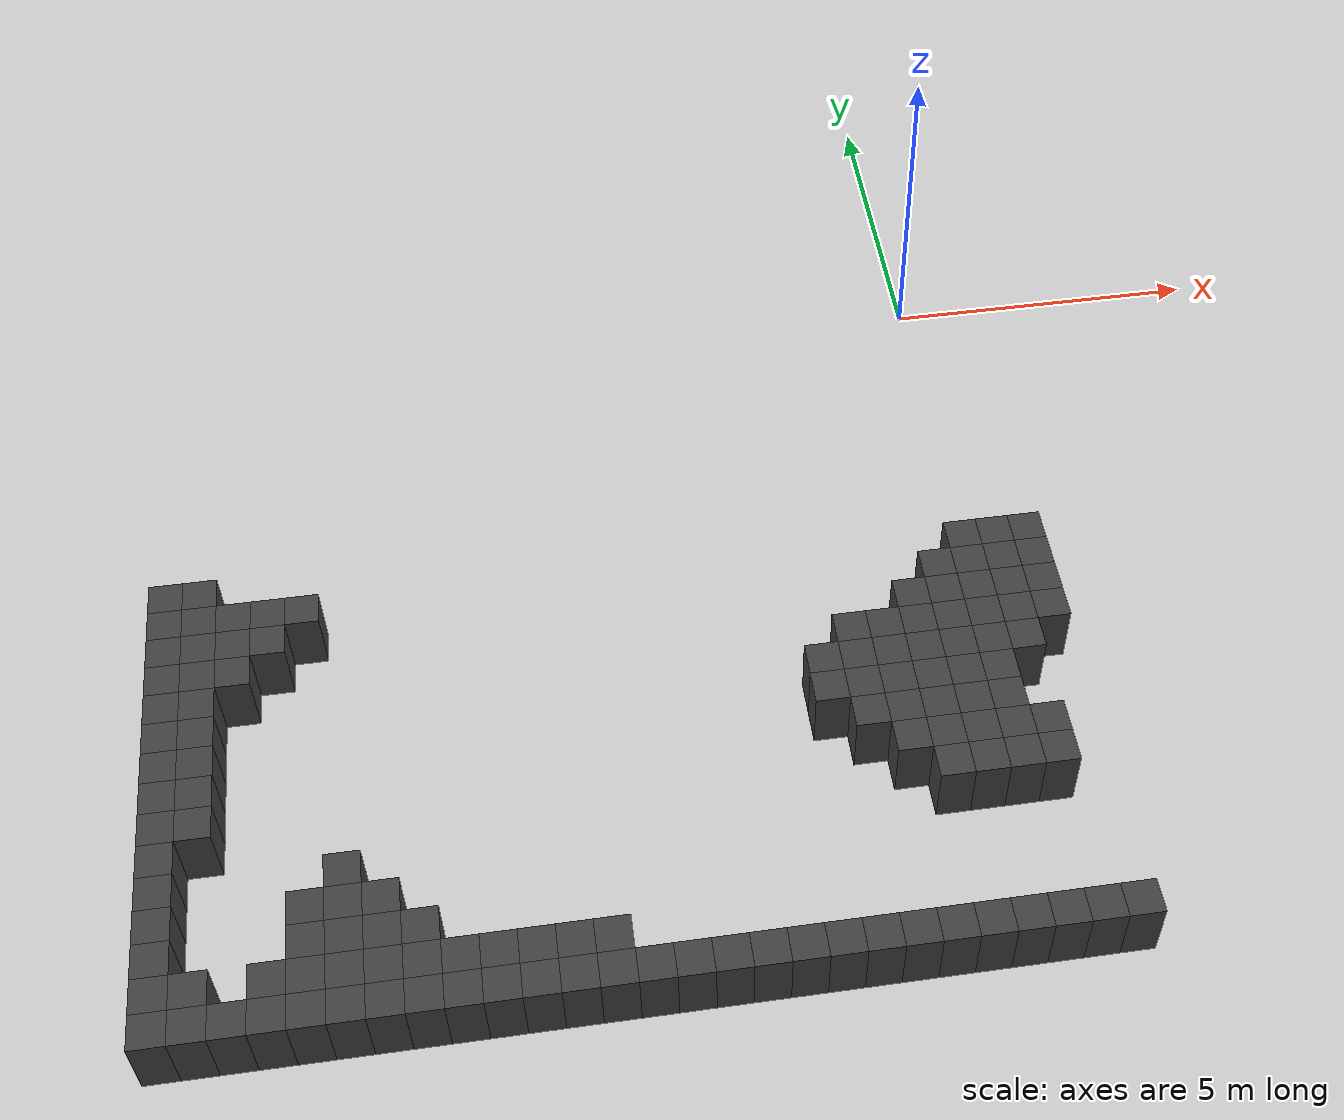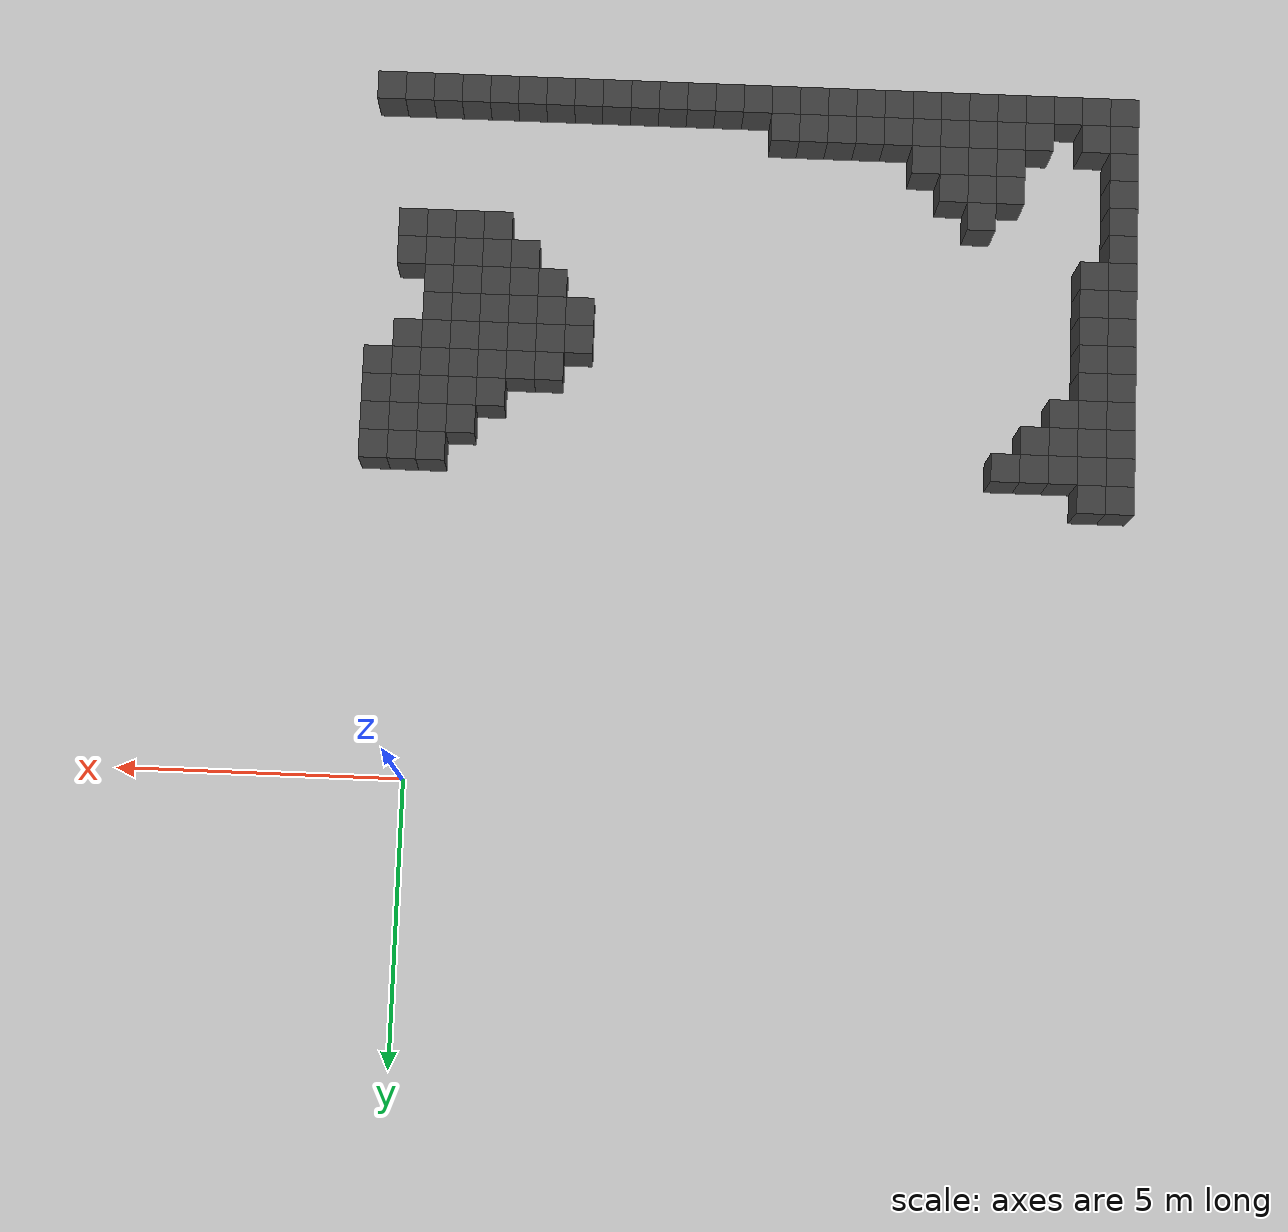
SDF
<sdf version="1.7">
 <world name="map_8661">
  <model name="ground_plane">
   <static>true</static>
   <link name="link">
    <collision name="collision">
     <geometry><plane><normal>0 0 1</normal><size>200 200</size></plane></geometry>
    </collision>
    <visual name="visual">
     <geometry><plane><normal>0 0 1</normal><size>200 200</size></plane></geometry>
     <material><ambient>0.8 0.8 0.8 1</ambient><diffuse>0.8 0.8 0.8 1</diffuse></material>
    </visual>
   </link>
  </model>
  <model name="maze_environment">
   <static>true</static>
   <link name="wall_500">
    <pose>-12.250 -5.250 0.500 0 0 0</pose>
    <collision name="col"><geometry><box><size>0.5 0.5 1.0</size></box></geometry></collision>
    <visual name="vis">
     <geometry><box><size>0.5 0.5 1.0</size></box></geometry>
     <material><ambient>0.15 0.15 0.15 1</ambient><diffuse>0.25 0.25 0.25 1</diffuse></material>
    </visual>
   </link>
   <link name="wall_501">
    <pose>-11.750 -5.250 0.500 0 0 0</pose>
    <collision name="col"><geometry><box><size>0.5 0.5 1.0</size></box></geometry></collision>
    <visual name="vis">
     <geometry><box><size>0.5 0.5 1.0</size></box></geometry>
     <material><ambient>0.15 0.15 0.15 1</ambient><diffuse>0.25 0.25 0.25 1</diffuse></material>
    </visual>
   </link>
   <link name="wall_512">
    <pose>-12.250 -5.750 0.500 0 0 0</pose>
    <collision name="col"><geometry><box><size>0.5 0.5 1.0</size></box></geometry></collision>
    <visual name="vis">
     <geometry><box><size>0.5 0.5 1.0</size></box></geometry>
     <material><ambient>0.15 0.15 0.15 1</ambient><diffuse>0.25 0.25 0.25 1</diffuse></material>
    </visual>
   </link>
   <link name="wall_513">
    <pose>-11.750 -5.750 0.500 0 0 0</pose>
    <collision name="col"><geometry><box><size>0.5 0.5 1.0</size></box></geometry></collision>
    <visual name="vis">
     <geometry><box><size>0.5 0.5 1.0</size></box></geometry>
     <material><ambient>0.15 0.15 0.15 1</ambient><diffuse>0.25 0.25 0.25 1</diffuse></material>
    </visual>
   </link>
   <link name="wall_514">
    <pose>-11.250 -5.750 0.500 0 0 0</pose>
    <collision name="col"><geometry><box><size>0.5 0.5 1.0</size></box></geometry></collision>
    <visual name="vis">
     <geometry><box><size>0.5 0.5 1.0</size></box></geometry>
     <material><ambient>0.15 0.15 0.15 1</ambient><diffuse>0.25 0.25 0.25 1</diffuse></material>
    </visual>
   </link>
   <link name="wall_515">
    <pose>-10.750 -5.750 0.500 0 0 0</pose>
    <collision name="col"><geometry><box><size>0.5 0.5 1.0</size></box></geometry></collision>
    <visual name="vis">
     <geometry><box><size>0.5 0.5 1.0</size></box></geometry>
     <material><ambient>0.15 0.15 0.15 1</ambient><diffuse>0.25 0.25 0.25 1</diffuse></material>
    </visual>
   </link>
   <link name="wall_516">
    <pose>-10.250 -5.750 0.500 0 0 0</pose>
    <collision name="col"><geometry><box><size>0.5 0.5 1.0</size></box></geometry></collision>
    <visual name="vis">
     <geometry><box><size>0.5 0.5 1.0</size></box></geometry>
     <material><ambient>0.15 0.15 0.15 1</ambient><diffuse>0.25 0.25 0.25 1</diffuse></material>
    </visual>
   </link>
   <link name="wall_517">
    <pose>-0.250 -5.750 0.500 0 0 0</pose>
    <collision name="col"><geometry><box><size>0.5 0.5 1.0</size></box></geometry></collision>
    <visual name="vis">
     <geometry><box><size>0.5 0.5 1.0</size></box></geometry>
     <material><ambient>0.15 0.15 0.15 1</ambient><diffuse>0.25 0.25 0.25 1</diffuse></material>
    </visual>
   </link>
   <link name="wall_518">
    <pose>0.250 -5.750 0.500 0 0 0</pose>
    <collision name="col"><geometry><box><size>0.5 0.5 1.0</size></box></geometry></collision>
    <visual name="vis">
     <geometry><box><size>0.5 0.5 1.0</size></box></geometry>
     <material><ambient>0.15 0.15 0.15 1</ambient><diffuse>0.25 0.25 0.25 1</diffuse></material>
    </visual>
   </link>
   <link name="wall_519">
    <pose>0.750 -5.750 0.500 0 0 0</pose>
    <collision name="col"><geometry><box><size>0.5 0.5 1.0</size></box></geometry></collision>
    <visual name="vis">
     <geometry><box><size>0.5 0.5 1.0</size></box></geometry>
     <material><ambient>0.15 0.15 0.15 1</ambient><diffuse>0.25 0.25 0.25 1</diffuse></material>
    </visual>
   </link>
   <link name="wall_523">
    <pose>-12.250 -6.250 0.500 0 0 0</pose>
    <collision name="col"><geometry><box><size>0.5 0.5 1.0</size></box></geometry></collision>
    <visual name="vis">
     <geometry><box><size>0.5 0.5 1.0</size></box></geometry>
     <material><ambient>0.15 0.15 0.15 1</ambient><diffuse>0.25 0.25 0.25 1</diffuse></material>
    </visual>
   </link>
   <link name="wall_524">
    <pose>-11.750 -6.250 0.500 0 0 0</pose>
    <collision name="col"><geometry><box><size>0.5 0.5 1.0</size></box></geometry></collision>
    <visual name="vis">
     <geometry><box><size>0.5 0.5 1.0</size></box></geometry>
     <material><ambient>0.15 0.15 0.15 1</ambient><diffuse>0.25 0.25 0.25 1</diffuse></material>
    </visual>
   </link>
   <link name="wall_525">
    <pose>-11.250 -6.250 0.500 0 0 0</pose>
    <collision name="col"><geometry><box><size>0.5 0.5 1.0</size></box></geometry></collision>
    <visual name="vis">
     <geometry><box><size>0.5 0.5 1.0</size></box></geometry>
     <material><ambient>0.15 0.15 0.15 1</ambient><diffuse>0.25 0.25 0.25 1</diffuse></material>
    </visual>
   </link>
   <link name="wall_526">
    <pose>-10.750 -6.250 0.500 0 0 0</pose>
    <collision name="col"><geometry><box><size>0.5 0.5 1.0</size></box></geometry></collision>
    <visual name="vis">
     <geometry><box><size>0.5 0.5 1.0</size></box></geometry>
     <material><ambient>0.15 0.15 0.15 1</ambient><diffuse>0.25 0.25 0.25 1</diffuse></material>
    </visual>
   </link>
   <link name="wall_527">
    <pose>-0.750 -6.250 0.500 0 0 0</pose>
    <collision name="col"><geometry><box><size>0.5 0.5 1.0</size></box></geometry></collision>
    <visual name="vis">
     <geometry><box><size>0.5 0.5 1.0</size></box></geometry>
     <material><ambient>0.15 0.15 0.15 1</ambient><diffuse>0.25 0.25 0.25 1</diffuse></material>
    </visual>
   </link>
   <link name="wall_528">
    <pose>-0.250 -6.250 0.500 0 0 0</pose>
    <collision name="col"><geometry><box><size>0.5 0.5 1.0</size></box></geometry></collision>
    <visual name="vis">
     <geometry><box><size>0.5 0.5 1.0</size></box></geometry>
     <material><ambient>0.15 0.15 0.15 1</ambient><diffuse>0.25 0.25 0.25 1</diffuse></material>
    </visual>
   </link>
   <link name="wall_529">
    <pose>0.250 -6.250 0.500 0 0 0</pose>
    <collision name="col"><geometry><box><size>0.5 0.5 1.0</size></box></geometry></collision>
    <visual name="vis">
     <geometry><box><size>0.5 0.5 1.0</size></box></geometry>
     <material><ambient>0.15 0.15 0.15 1</ambient><diffuse>0.25 0.25 0.25 1</diffuse></material>
    </visual>
   </link>
   <link name="wall_530">
    <pose>0.750 -6.250 0.500 0 0 0</pose>
    <collision name="col"><geometry><box><size>0.5 0.5 1.0</size></box></geometry></collision>
    <visual name="vis">
     <geometry><box><size>0.5 0.5 1.0</size></box></geometry>
     <material><ambient>0.15 0.15 0.15 1</ambient><diffuse>0.25 0.25 0.25 1</diffuse></material>
    </visual>
   </link>
   <link name="wall_537">
    <pose>-12.250 -6.750 0.500 0 0 0</pose>
    <collision name="col"><geometry><box><size>0.5 0.5 1.0</size></box></geometry></collision>
    <visual name="vis">
     <geometry><box><size>0.5 0.5 1.0</size></box></geometry>
     <material><ambient>0.15 0.15 0.15 1</ambient><diffuse>0.25 0.25 0.25 1</diffuse></material>
    </visual>
   </link>
   <link name="wall_538">
    <pose>-11.750 -6.750 0.500 0 0 0</pose>
    <collision name="col"><geometry><box><size>0.5 0.5 1.0</size></box></geometry></collision>
    <visual name="vis">
     <geometry><box><size>0.5 0.5 1.0</size></box></geometry>
     <material><ambient>0.15 0.15 0.15 1</ambient><diffuse>0.25 0.25 0.25 1</diffuse></material>
    </visual>
   </link>
   <link name="wall_539">
    <pose>-11.250 -6.750 0.500 0 0 0</pose>
    <collision name="col"><geometry><box><size>0.5 0.5 1.0</size></box></geometry></collision>
    <visual name="vis">
     <geometry><box><size>0.5 0.5 1.0</size></box></geometry>
     <material><ambient>0.15 0.15 0.15 1</ambient><diffuse>0.25 0.25 0.25 1</diffuse></material>
    </visual>
   </link>
   <link name="wall_540">
    <pose>-1.250 -6.750 0.500 0 0 0</pose>
    <collision name="col"><geometry><box><size>0.5 0.5 1.0</size></box></geometry></collision>
    <visual name="vis">
     <geometry><box><size>0.5 0.5 1.0</size></box></geometry>
     <material><ambient>0.15 0.15 0.15 1</ambient><diffuse>0.25 0.25 0.25 1</diffuse></material>
    </visual>
   </link>
   <link name="wall_541">
    <pose>-0.750 -6.750 0.500 0 0 0</pose>
    <collision name="col"><geometry><box><size>0.5 0.5 1.0</size></box></geometry></collision>
    <visual name="vis">
     <geometry><box><size>0.5 0.5 1.0</size></box></geometry>
     <material><ambient>0.15 0.15 0.15 1</ambient><diffuse>0.25 0.25 0.25 1</diffuse></material>
    </visual>
   </link>
   <link name="wall_542">
    <pose>-0.250 -6.750 0.500 0 0 0</pose>
    <collision name="col"><geometry><box><size>0.5 0.5 1.0</size></box></geometry></collision>
    <visual name="vis">
     <geometry><box><size>0.5 0.5 1.0</size></box></geometry>
     <material><ambient>0.15 0.15 0.15 1</ambient><diffuse>0.25 0.25 0.25 1</diffuse></material>
    </visual>
   </link>
   <link name="wall_543">
    <pose>0.250 -6.750 0.500 0 0 0</pose>
    <collision name="col"><geometry><box><size>0.5 0.5 1.0</size></box></geometry></collision>
    <visual name="vis">
     <geometry><box><size>0.5 0.5 1.0</size></box></geometry>
     <material><ambient>0.15 0.15 0.15 1</ambient><diffuse>0.25 0.25 0.25 1</diffuse></material>
    </visual>
   </link>
   <link name="wall_544">
    <pose>0.750 -6.750 0.500 0 0 0</pose>
    <collision name="col"><geometry><box><size>0.5 0.5 1.0</size></box></geometry></collision>
    <visual name="vis">
     <geometry><box><size>0.5 0.5 1.0</size></box></geometry>
     <material><ambient>0.15 0.15 0.15 1</ambient><diffuse>0.25 0.25 0.25 1</diffuse></material>
    </visual>
   </link>
   <link name="wall_555">
    <pose>-12.250 -7.250 0.500 0 0 0</pose>
    <collision name="col"><geometry><box><size>0.5 0.5 1.0</size></box></geometry></collision>
    <visual name="vis">
     <geometry><box><size>0.5 0.5 1.0</size></box></geometry>
     <material><ambient>0.15 0.15 0.15 1</ambient><diffuse>0.25 0.25 0.25 1</diffuse></material>
    </visual>
   </link>
   <link name="wall_556">
    <pose>-11.750 -7.250 0.500 0 0 0</pose>
    <collision name="col"><geometry><box><size>0.5 0.5 1.0</size></box></geometry></collision>
    <visual name="vis">
     <geometry><box><size>0.5 0.5 1.0</size></box></geometry>
     <material><ambient>0.15 0.15 0.15 1</ambient><diffuse>0.25 0.25 0.25 1</diffuse></material>
    </visual>
   </link>
   <link name="wall_557">
    <pose>-2.250 -7.250 0.500 0 0 0</pose>
    <collision name="col"><geometry><box><size>0.5 0.5 1.0</size></box></geometry></collision>
    <visual name="vis">
     <geometry><box><size>0.5 0.5 1.0</size></box></geometry>
     <material><ambient>0.15 0.15 0.15 1</ambient><diffuse>0.25 0.25 0.25 1</diffuse></material>
    </visual>
   </link>
   <link name="wall_558">
    <pose>-1.750 -7.250 0.500 0 0 0</pose>
    <collision name="col"><geometry><box><size>0.5 0.5 1.0</size></box></geometry></collision>
    <visual name="vis">
     <geometry><box><size>0.5 0.5 1.0</size></box></geometry>
     <material><ambient>0.15 0.15 0.15 1</ambient><diffuse>0.25 0.25 0.25 1</diffuse></material>
    </visual>
   </link>
   <link name="wall_559">
    <pose>-1.250 -7.250 0.500 0 0 0</pose>
    <collision name="col"><geometry><box><size>0.5 0.5 1.0</size></box></geometry></collision>
    <visual name="vis">
     <geometry><box><size>0.5 0.5 1.0</size></box></geometry>
     <material><ambient>0.15 0.15 0.15 1</ambient><diffuse>0.25 0.25 0.25 1</diffuse></material>
    </visual>
   </link>
   <link name="wall_560">
    <pose>-0.750 -7.250 0.500 0 0 0</pose>
    <collision name="col"><geometry><box><size>0.5 0.5 1.0</size></box></geometry></collision>
    <visual name="vis">
     <geometry><box><size>0.5 0.5 1.0</size></box></geometry>
     <material><ambient>0.15 0.15 0.15 1</ambient><diffuse>0.25 0.25 0.25 1</diffuse></material>
    </visual>
   </link>
   <link name="wall_561">
    <pose>-0.250 -7.250 0.500 0 0 0</pose>
    <collision name="col"><geometry><box><size>0.5 0.5 1.0</size></box></geometry></collision>
    <visual name="vis">
     <geometry><box><size>0.5 0.5 1.0</size></box></geometry>
     <material><ambient>0.15 0.15 0.15 1</ambient><diffuse>0.25 0.25 0.25 1</diffuse></material>
    </visual>
   </link>
   <link name="wall_562">
    <pose>0.250 -7.250 0.500 0 0 0</pose>
    <collision name="col"><geometry><box><size>0.5 0.5 1.0</size></box></geometry></collision>
    <visual name="vis">
     <geometry><box><size>0.5 0.5 1.0</size></box></geometry>
     <material><ambient>0.15 0.15 0.15 1</ambient><diffuse>0.25 0.25 0.25 1</diffuse></material>
    </visual>
   </link>
   <link name="wall_563">
    <pose>0.750 -7.250 0.500 0 0 0</pose>
    <collision name="col"><geometry><box><size>0.5 0.5 1.0</size></box></geometry></collision>
    <visual name="vis">
     <geometry><box><size>0.5 0.5 1.0</size></box></geometry>
     <material><ambient>0.15 0.15 0.15 1</ambient><diffuse>0.25 0.25 0.25 1</diffuse></material>
    </visual>
   </link>
   <link name="wall_577">
    <pose>-12.250 -7.750 0.500 0 0 0</pose>
    <collision name="col"><geometry><box><size>0.5 0.5 1.0</size></box></geometry></collision>
    <visual name="vis">
     <geometry><box><size>0.5 0.5 1.0</size></box></geometry>
     <material><ambient>0.15 0.15 0.15 1</ambient><diffuse>0.25 0.25 0.25 1</diffuse></material>
    </visual>
   </link>
   <link name="wall_578">
    <pose>-11.750 -7.750 0.500 0 0 0</pose>
    <collision name="col"><geometry><box><size>0.5 0.5 1.0</size></box></geometry></collision>
    <visual name="vis">
     <geometry><box><size>0.5 0.5 1.0</size></box></geometry>
     <material><ambient>0.15 0.15 0.15 1</ambient><diffuse>0.25 0.25 0.25 1</diffuse></material>
    </visual>
   </link>
   <link name="wall_579">
    <pose>-2.750 -7.750 0.500 0 0 0</pose>
    <collision name="col"><geometry><box><size>0.5 0.5 1.0</size></box></geometry></collision>
    <visual name="vis">
     <geometry><box><size>0.5 0.5 1.0</size></box></geometry>
     <material><ambient>0.15 0.15 0.15 1</ambient><diffuse>0.25 0.25 0.25 1</diffuse></material>
    </visual>
   </link>
   <link name="wall_580">
    <pose>-2.250 -7.750 0.500 0 0 0</pose>
    <collision name="col"><geometry><box><size>0.5 0.5 1.0</size></box></geometry></collision>
    <visual name="vis">
     <geometry><box><size>0.5 0.5 1.0</size></box></geometry>
     <material><ambient>0.15 0.15 0.15 1</ambient><diffuse>0.25 0.25 0.25 1</diffuse></material>
    </visual>
   </link>
   <link name="wall_581">
    <pose>-1.750 -7.750 0.500 0 0 0</pose>
    <collision name="col"><geometry><box><size>0.5 0.5 1.0</size></box></geometry></collision>
    <visual name="vis">
     <geometry><box><size>0.5 0.5 1.0</size></box></geometry>
     <material><ambient>0.15 0.15 0.15 1</ambient><diffuse>0.25 0.25 0.25 1</diffuse></material>
    </visual>
   </link>
   <link name="wall_582">
    <pose>-1.250 -7.750 0.500 0 0 0</pose>
    <collision name="col"><geometry><box><size>0.5 0.5 1.0</size></box></geometry></collision>
    <visual name="vis">
     <geometry><box><size>0.5 0.5 1.0</size></box></geometry>
     <material><ambient>0.15 0.15 0.15 1</ambient><diffuse>0.25 0.25 0.25 1</diffuse></material>
    </visual>
   </link>
   <link name="wall_583">
    <pose>-0.750 -7.750 0.500 0 0 0</pose>
    <collision name="col"><geometry><box><size>0.5 0.5 1.0</size></box></geometry></collision>
    <visual name="vis">
     <geometry><box><size>0.5 0.5 1.0</size></box></geometry>
     <material><ambient>0.15 0.15 0.15 1</ambient><diffuse>0.25 0.25 0.25 1</diffuse></material>
    </visual>
   </link>
   <link name="wall_584">
    <pose>-0.250 -7.750 0.500 0 0 0</pose>
    <collision name="col"><geometry><box><size>0.5 0.5 1.0</size></box></geometry></collision>
    <visual name="vis">
     <geometry><box><size>0.5 0.5 1.0</size></box></geometry>
     <material><ambient>0.15 0.15 0.15 1</ambient><diffuse>0.25 0.25 0.25 1</diffuse></material>
    </visual>
   </link>
   <link name="wall_585">
    <pose>0.250 -7.750 0.500 0 0 0</pose>
    <collision name="col"><geometry><box><size>0.5 0.5 1.0</size></box></geometry></collision>
    <visual name="vis">
     <geometry><box><size>0.5 0.5 1.0</size></box></geometry>
     <material><ambient>0.15 0.15 0.15 1</ambient><diffuse>0.25 0.25 0.25 1</diffuse></material>
    </visual>
   </link>
   <link name="wall_596">
    <pose>-12.250 -8.250 0.500 0 0 0</pose>
    <collision name="col"><geometry><box><size>0.5 0.5 1.0</size></box></geometry></collision>
    <visual name="vis">
     <geometry><box><size>0.5 0.5 1.0</size></box></geometry>
     <material><ambient>0.15 0.15 0.15 1</ambient><diffuse>0.25 0.25 0.25 1</diffuse></material>
    </visual>
   </link>
   <link name="wall_597">
    <pose>-11.750 -8.250 0.500 0 0 0</pose>
    <collision name="col"><geometry><box><size>0.5 0.5 1.0</size></box></geometry></collision>
    <visual name="vis">
     <geometry><box><size>0.5 0.5 1.0</size></box></geometry>
     <material><ambient>0.15 0.15 0.15 1</ambient><diffuse>0.25 0.25 0.25 1</diffuse></material>
    </visual>
   </link>
   <link name="wall_598">
    <pose>-2.750 -8.250 0.500 0 0 0</pose>
    <collision name="col"><geometry><box><size>0.5 0.5 1.0</size></box></geometry></collision>
    <visual name="vis">
     <geometry><box><size>0.5 0.5 1.0</size></box></geometry>
     <material><ambient>0.15 0.15 0.15 1</ambient><diffuse>0.25 0.25 0.25 1</diffuse></material>
    </visual>
   </link>
   <link name="wall_599">
    <pose>-2.250 -8.250 0.500 0 0 0</pose>
    <collision name="col"><geometry><box><size>0.5 0.5 1.0</size></box></geometry></collision>
    <visual name="vis">
     <geometry><box><size>0.5 0.5 1.0</size></box></geometry>
     <material><ambient>0.15 0.15 0.15 1</ambient><diffuse>0.25 0.25 0.25 1</diffuse></material>
    </visual>
   </link>
   <link name="wall_600">
    <pose>-1.750 -8.250 0.500 0 0 0</pose>
    <collision name="col"><geometry><box><size>0.5 0.5 1.0</size></box></geometry></collision>
    <visual name="vis">
     <geometry><box><size>0.5 0.5 1.0</size></box></geometry>
     <material><ambient>0.15 0.15 0.15 1</ambient><diffuse>0.25 0.25 0.25 1</diffuse></material>
    </visual>
   </link>
   <link name="wall_601">
    <pose>-1.250 -8.250 0.500 0 0 0</pose>
    <collision name="col"><geometry><box><size>0.5 0.5 1.0</size></box></geometry></collision>
    <visual name="vis">
     <geometry><box><size>0.5 0.5 1.0</size></box></geometry>
     <material><ambient>0.15 0.15 0.15 1</ambient><diffuse>0.25 0.25 0.25 1</diffuse></material>
    </visual>
   </link>
   <link name="wall_602">
    <pose>-0.750 -8.250 0.500 0 0 0</pose>
    <collision name="col"><geometry><box><size>0.5 0.5 1.0</size></box></geometry></collision>
    <visual name="vis">
     <geometry><box><size>0.5 0.5 1.0</size></box></geometry>
     <material><ambient>0.15 0.15 0.15 1</ambient><diffuse>0.25 0.25 0.25 1</diffuse></material>
    </visual>
   </link>
   <link name="wall_603">
    <pose>-0.250 -8.250 0.500 0 0 0</pose>
    <collision name="col"><geometry><box><size>0.5 0.5 1.0</size></box></geometry></collision>
    <visual name="vis">
     <geometry><box><size>0.5 0.5 1.0</size></box></geometry>
     <material><ambient>0.15 0.15 0.15 1</ambient><diffuse>0.25 0.25 0.25 1</diffuse></material>
    </visual>
   </link>
   <link name="wall_610">
    <pose>-12.250 -8.750 0.500 0 0 0</pose>
    <collision name="col"><geometry><box><size>0.5 0.5 1.0</size></box></geometry></collision>
    <visual name="vis">
     <geometry><box><size>0.5 0.5 1.0</size></box></geometry>
     <material><ambient>0.15 0.15 0.15 1</ambient><diffuse>0.25 0.25 0.25 1</diffuse></material>
    </visual>
   </link>
   <link name="wall_611">
    <pose>-11.750 -8.750 0.500 0 0 0</pose>
    <collision name="col"><geometry><box><size>0.5 0.5 1.0</size></box></geometry></collision>
    <visual name="vis">
     <geometry><box><size>0.5 0.5 1.0</size></box></geometry>
     <material><ambient>0.15 0.15 0.15 1</ambient><diffuse>0.25 0.25 0.25 1</diffuse></material>
    </visual>
   </link>
   <link name="wall_612">
    <pose>-2.250 -8.750 0.500 0 0 0</pose>
    <collision name="col"><geometry><box><size>0.5 0.5 1.0</size></box></geometry></collision>
    <visual name="vis">
     <geometry><box><size>0.5 0.5 1.0</size></box></geometry>
     <material><ambient>0.15 0.15 0.15 1</ambient><diffuse>0.25 0.25 0.25 1</diffuse></material>
    </visual>
   </link>
   <link name="wall_613">
    <pose>-1.750 -8.750 0.500 0 0 0</pose>
    <collision name="col"><geometry><box><size>0.5 0.5 1.0</size></box></geometry></collision>
    <visual name="vis">
     <geometry><box><size>0.5 0.5 1.0</size></box></geometry>
     <material><ambient>0.15 0.15 0.15 1</ambient><diffuse>0.25 0.25 0.25 1</diffuse></material>
    </visual>
   </link>
   <link name="wall_614">
    <pose>-1.250 -8.750 0.500 0 0 0</pose>
    <collision name="col"><geometry><box><size>0.5 0.5 1.0</size></box></geometry></collision>
    <visual name="vis">
     <geometry><box><size>0.5 0.5 1.0</size></box></geometry>
     <material><ambient>0.15 0.15 0.15 1</ambient><diffuse>0.25 0.25 0.25 1</diffuse></material>
    </visual>
   </link>
   <link name="wall_615">
    <pose>-0.750 -8.750 0.500 0 0 0</pose>
    <collision name="col"><geometry><box><size>0.5 0.5 1.0</size></box></geometry></collision>
    <visual name="vis">
     <geometry><box><size>0.5 0.5 1.0</size></box></geometry>
     <material><ambient>0.15 0.15 0.15 1</ambient><diffuse>0.25 0.25 0.25 1</diffuse></material>
    </visual>
   </link>
   <link name="wall_616">
    <pose>-0.250 -8.750 0.500 0 0 0</pose>
    <collision name="col"><geometry><box><size>0.5 0.5 1.0</size></box></geometry></collision>
    <visual name="vis">
     <geometry><box><size>0.5 0.5 1.0</size></box></geometry>
     <material><ambient>0.15 0.15 0.15 1</ambient><diffuse>0.25 0.25 0.25 1</diffuse></material>
    </visual>
   </link>
   <link name="wall_621">
    <pose>-12.250 -9.250 0.500 0 0 0</pose>
    <collision name="col"><geometry><box><size>0.5 0.5 1.0</size></box></geometry></collision>
    <visual name="vis">
     <geometry><box><size>0.5 0.5 1.0</size></box></geometry>
     <material><ambient>0.15 0.15 0.15 1</ambient><diffuse>0.25 0.25 0.25 1</diffuse></material>
    </visual>
   </link>
   <link name="wall_622">
    <pose>-11.750 -9.250 0.500 0 0 0</pose>
    <collision name="col"><geometry><box><size>0.5 0.5 1.0</size></box></geometry></collision>
    <visual name="vis">
     <geometry><box><size>0.5 0.5 1.0</size></box></geometry>
     <material><ambient>0.15 0.15 0.15 1</ambient><diffuse>0.25 0.25 0.25 1</diffuse></material>
    </visual>
   </link>
   <link name="wall_623">
    <pose>-1.750 -9.250 0.500 0 0 0</pose>
    <collision name="col"><geometry><box><size>0.5 0.5 1.0</size></box></geometry></collision>
    <visual name="vis">
     <geometry><box><size>0.5 0.5 1.0</size></box></geometry>
     <material><ambient>0.15 0.15 0.15 1</ambient><diffuse>0.25 0.25 0.25 1</diffuse></material>
    </visual>
   </link>
   <link name="wall_624">
    <pose>-1.250 -9.250 0.500 0 0 0</pose>
    <collision name="col"><geometry><box><size>0.5 0.5 1.0</size></box></geometry></collision>
    <visual name="vis">
     <geometry><box><size>0.5 0.5 1.0</size></box></geometry>
     <material><ambient>0.15 0.15 0.15 1</ambient><diffuse>0.25 0.25 0.25 1</diffuse></material>
    </visual>
   </link>
   <link name="wall_625">
    <pose>-0.750 -9.250 0.500 0 0 0</pose>
    <collision name="col"><geometry><box><size>0.5 0.5 1.0</size></box></geometry></collision>
    <visual name="vis">
     <geometry><box><size>0.5 0.5 1.0</size></box></geometry>
     <material><ambient>0.15 0.15 0.15 1</ambient><diffuse>0.25 0.25 0.25 1</diffuse></material>
    </visual>
   </link>
   <link name="wall_626">
    <pose>-0.250 -9.250 0.500 0 0 0</pose>
    <collision name="col"><geometry><box><size>0.5 0.5 1.0</size></box></geometry></collision>
    <visual name="vis">
     <geometry><box><size>0.5 0.5 1.0</size></box></geometry>
     <material><ambient>0.15 0.15 0.15 1</ambient><diffuse>0.25 0.25 0.25 1</diffuse></material>
    </visual>
   </link>
   <link name="wall_627">
    <pose>0.250 -9.250 0.500 0 0 0</pose>
    <collision name="col"><geometry><box><size>0.5 0.5 1.0</size></box></geometry></collision>
    <visual name="vis">
     <geometry><box><size>0.5 0.5 1.0</size></box></geometry>
     <material><ambient>0.15 0.15 0.15 1</ambient><diffuse>0.25 0.25 0.25 1</diffuse></material>
    </visual>
   </link>
   <link name="wall_632">
    <pose>-12.250 -9.750 0.500 0 0 0</pose>
    <collision name="col"><geometry><box><size>0.5 0.5 1.0</size></box></geometry></collision>
    <visual name="vis">
     <geometry><box><size>0.5 0.5 1.0</size></box></geometry>
     <material><ambient>0.15 0.15 0.15 1</ambient><diffuse>0.25 0.25 0.25 1</diffuse></material>
    </visual>
   </link>
   <link name="wall_633">
    <pose>-1.250 -9.750 0.500 0 0 0</pose>
    <collision name="col"><geometry><box><size>0.5 0.5 1.0</size></box></geometry></collision>
    <visual name="vis">
     <geometry><box><size>0.5 0.5 1.0</size></box></geometry>
     <material><ambient>0.15 0.15 0.15 1</ambient><diffuse>0.25 0.25 0.25 1</diffuse></material>
    </visual>
   </link>
   <link name="wall_634">
    <pose>-0.750 -9.750 0.500 0 0 0</pose>
    <collision name="col"><geometry><box><size>0.5 0.5 1.0</size></box></geometry></collision>
    <visual name="vis">
     <geometry><box><size>0.5 0.5 1.0</size></box></geometry>
     <material><ambient>0.15 0.15 0.15 1</ambient><diffuse>0.25 0.25 0.25 1</diffuse></material>
    </visual>
   </link>
   <link name="wall_635">
    <pose>-0.250 -9.750 0.500 0 0 0</pose>
    <collision name="col"><geometry><box><size>0.5 0.5 1.0</size></box></geometry></collision>
    <visual name="vis">
     <geometry><box><size>0.5 0.5 1.0</size></box></geometry>
     <material><ambient>0.15 0.15 0.15 1</ambient><diffuse>0.25 0.25 0.25 1</diffuse></material>
    </visual>
   </link>
   <link name="wall_636">
    <pose>0.250 -9.750 0.500 0 0 0</pose>
    <collision name="col"><geometry><box><size>0.5 0.5 1.0</size></box></geometry></collision>
    <visual name="vis">
     <geometry><box><size>0.5 0.5 1.0</size></box></geometry>
     <material><ambient>0.15 0.15 0.15 1</ambient><diffuse>0.25 0.25 0.25 1</diffuse></material>
    </visual>
   </link>
   <link name="wall_638">
    <pose>-12.250 -10.250 0.500 0 0 0</pose>
    <collision name="col"><geometry><box><size>0.5 0.5 1.0</size></box></geometry></collision>
    <visual name="vis">
     <geometry><box><size>0.5 0.5 1.0</size></box></geometry>
     <material><ambient>0.15 0.15 0.15 1</ambient><diffuse>0.25 0.25 0.25 1</diffuse></material>
    </visual>
   </link>
   <link name="wall_639">
    <pose>-9.750 -10.250 0.500 0 0 0</pose>
    <collision name="col"><geometry><box><size>0.5 0.5 1.0</size></box></geometry></collision>
    <visual name="vis">
     <geometry><box><size>0.5 0.5 1.0</size></box></geometry>
     <material><ambient>0.15 0.15 0.15 1</ambient><diffuse>0.25 0.25 0.25 1</diffuse></material>
    </visual>
   </link>
   <link name="wall_641">
    <pose>-12.250 -10.750 0.500 0 0 0</pose>
    <collision name="col"><geometry><box><size>0.5 0.5 1.0</size></box></geometry></collision>
    <visual name="vis">
     <geometry><box><size>0.5 0.5 1.0</size></box></geometry>
     <material><ambient>0.15 0.15 0.15 1</ambient><diffuse>0.25 0.25 0.25 1</diffuse></material>
    </visual>
   </link>
   <link name="wall_642">
    <pose>-10.250 -10.750 0.500 0 0 0</pose>
    <collision name="col"><geometry><box><size>0.5 0.5 1.0</size></box></geometry></collision>
    <visual name="vis">
     <geometry><box><size>0.5 0.5 1.0</size></box></geometry>
     <material><ambient>0.15 0.15 0.15 1</ambient><diffuse>0.25 0.25 0.25 1</diffuse></material>
    </visual>
   </link>
   <link name="wall_643">
    <pose>-9.750 -10.750 0.500 0 0 0</pose>
    <collision name="col"><geometry><box><size>0.5 0.5 1.0</size></box></geometry></collision>
    <visual name="vis">
     <geometry><box><size>0.5 0.5 1.0</size></box></geometry>
     <material><ambient>0.15 0.15 0.15 1</ambient><diffuse>0.25 0.25 0.25 1</diffuse></material>
    </visual>
   </link>
   <link name="wall_644">
    <pose>-9.250 -10.750 0.500 0 0 0</pose>
    <collision name="col"><geometry><box><size>0.5 0.5 1.0</size></box></geometry></collision>
    <visual name="vis">
     <geometry><box><size>0.5 0.5 1.0</size></box></geometry>
     <material><ambient>0.15 0.15 0.15 1</ambient><diffuse>0.25 0.25 0.25 1</diffuse></material>
    </visual>
   </link>
   <link name="wall_646">
    <pose>-12.250 -11.250 0.500 0 0 0</pose>
    <collision name="col"><geometry><box><size>0.5 0.5 1.0</size></box></geometry></collision>
    <visual name="vis">
     <geometry><box><size>0.5 0.5 1.0</size></box></geometry>
     <material><ambient>0.15 0.15 0.15 1</ambient><diffuse>0.25 0.25 0.25 1</diffuse></material>
    </visual>
   </link>
   <link name="wall_647">
    <pose>-10.250 -11.250 0.500 0 0 0</pose>
    <collision name="col"><geometry><box><size>0.5 0.5 1.0</size></box></geometry></collision>
    <visual name="vis">
     <geometry><box><size>0.5 0.5 1.0</size></box></geometry>
     <material><ambient>0.15 0.15 0.15 1</ambient><diffuse>0.25 0.25 0.25 1</diffuse></material>
    </visual>
   </link>
   <link name="wall_648">
    <pose>-9.750 -11.250 0.500 0 0 0</pose>
    <collision name="col"><geometry><box><size>0.5 0.5 1.0</size></box></geometry></collision>
    <visual name="vis">
     <geometry><box><size>0.5 0.5 1.0</size></box></geometry>
     <material><ambient>0.15 0.15 0.15 1</ambient><diffuse>0.25 0.25 0.25 1</diffuse></material>
    </visual>
   </link>
   <link name="wall_649">
    <pose>-9.250 -11.250 0.500 0 0 0</pose>
    <collision name="col"><geometry><box><size>0.5 0.5 1.0</size></box></geometry></collision>
    <visual name="vis">
     <geometry><box><size>0.5 0.5 1.0</size></box></geometry>
     <material><ambient>0.15 0.15 0.15 1</ambient><diffuse>0.25 0.25 0.25 1</diffuse></material>
    </visual>
   </link>
   <link name="wall_650">
    <pose>-8.750 -11.250 0.500 0 0 0</pose>
    <collision name="col"><geometry><box><size>0.5 0.5 1.0</size></box></geometry></collision>
    <visual name="vis">
     <geometry><box><size>0.5 0.5 1.0</size></box></geometry>
     <material><ambient>0.15 0.15 0.15 1</ambient><diffuse>0.25 0.25 0.25 1</diffuse></material>
    </visual>
   </link>
   <link name="wall_654">
    <pose>-12.250 -11.750 0.500 0 0 0</pose>
    <collision name="col"><geometry><box><size>0.5 0.5 1.0</size></box></geometry></collision>
    <visual name="vis">
     <geometry><box><size>0.5 0.5 1.0</size></box></geometry>
     <material><ambient>0.15 0.15 0.15 1</ambient><diffuse>0.25 0.25 0.25 1</diffuse></material>
    </visual>
   </link>
   <link name="wall_655">
    <pose>-11.750 -11.750 0.500 0 0 0</pose>
    <collision name="col"><geometry><box><size>0.5 0.5 1.0</size></box></geometry></collision>
    <visual name="vis">
     <geometry><box><size>0.5 0.5 1.0</size></box></geometry>
     <material><ambient>0.15 0.15 0.15 1</ambient><diffuse>0.25 0.25 0.25 1</diffuse></material>
    </visual>
   </link>
   <link name="wall_656">
    <pose>-10.750 -11.750 0.500 0 0 0</pose>
    <collision name="col"><geometry><box><size>0.5 0.5 1.0</size></box></geometry></collision>
    <visual name="vis">
     <geometry><box><size>0.5 0.5 1.0</size></box></geometry>
     <material><ambient>0.15 0.15 0.15 1</ambient><diffuse>0.25 0.25 0.25 1</diffuse></material>
    </visual>
   </link>
   <link name="wall_657">
    <pose>-10.250 -11.750 0.500 0 0 0</pose>
    <collision name="col"><geometry><box><size>0.5 0.5 1.0</size></box></geometry></collision>
    <visual name="vis">
     <geometry><box><size>0.5 0.5 1.0</size></box></geometry>
     <material><ambient>0.15 0.15 0.15 1</ambient><diffuse>0.25 0.25 0.25 1</diffuse></material>
    </visual>
   </link>
   <link name="wall_658">
    <pose>-9.750 -11.750 0.500 0 0 0</pose>
    <collision name="col"><geometry><box><size>0.5 0.5 1.0</size></box></geometry></collision>
    <visual name="vis">
     <geometry><box><size>0.5 0.5 1.0</size></box></geometry>
     <material><ambient>0.15 0.15 0.15 1</ambient><diffuse>0.25 0.25 0.25 1</diffuse></material>
    </visual>
   </link>
   <link name="wall_659">
    <pose>-9.250 -11.750 0.500 0 0 0</pose>
    <collision name="col"><geometry><box><size>0.5 0.5 1.0</size></box></geometry></collision>
    <visual name="vis">
     <geometry><box><size>0.5 0.5 1.0</size></box></geometry>
     <material><ambient>0.15 0.15 0.15 1</ambient><diffuse>0.25 0.25 0.25 1</diffuse></material>
    </visual>
   </link>
   <link name="wall_660">
    <pose>-8.750 -11.750 0.500 0 0 0</pose>
    <collision name="col"><geometry><box><size>0.5 0.5 1.0</size></box></geometry></collision>
    <visual name="vis">
     <geometry><box><size>0.5 0.5 1.0</size></box></geometry>
     <material><ambient>0.15 0.15 0.15 1</ambient><diffuse>0.25 0.25 0.25 1</diffuse></material>
    </visual>
   </link>
   <link name="wall_661">
    <pose>-8.250 -11.750 0.500 0 0 0</pose>
    <collision name="col"><geometry><box><size>0.5 0.5 1.0</size></box></geometry></collision>
    <visual name="vis">
     <geometry><box><size>0.5 0.5 1.0</size></box></geometry>
     <material><ambient>0.15 0.15 0.15 1</ambient><diffuse>0.25 0.25 0.25 1</diffuse></material>
    </visual>
   </link>
   <link name="wall_662">
    <pose>-7.750 -11.750 0.500 0 0 0</pose>
    <collision name="col"><geometry><box><size>0.5 0.5 1.0</size></box></geometry></collision>
    <visual name="vis">
     <geometry><box><size>0.5 0.5 1.0</size></box></geometry>
     <material><ambient>0.15 0.15 0.15 1</ambient><diffuse>0.25 0.25 0.25 1</diffuse></material>
    </visual>
   </link>
   <link name="wall_663">
    <pose>-7.250 -11.750 0.500 0 0 0</pose>
    <collision name="col"><geometry><box><size>0.5 0.5 1.0</size></box></geometry></collision>
    <visual name="vis">
     <geometry><box><size>0.5 0.5 1.0</size></box></geometry>
     <material><ambient>0.15 0.15 0.15 1</ambient><diffuse>0.25 0.25 0.25 1</diffuse></material>
    </visual>
   </link>
   <link name="wall_664">
    <pose>-6.750 -11.750 0.500 0 0 0</pose>
    <collision name="col"><geometry><box><size>0.5 0.5 1.0</size></box></geometry></collision>
    <visual name="vis">
     <geometry><box><size>0.5 0.5 1.0</size></box></geometry>
     <material><ambient>0.15 0.15 0.15 1</ambient><diffuse>0.25 0.25 0.25 1</diffuse></material>
    </visual>
   </link>
   <link name="wall_665">
    <pose>-6.250 -11.750 0.500 0 0 0</pose>
    <collision name="col"><geometry><box><size>0.5 0.5 1.0</size></box></geometry></collision>
    <visual name="vis">
     <geometry><box><size>0.5 0.5 1.0</size></box></geometry>
     <material><ambient>0.15 0.15 0.15 1</ambient><diffuse>0.25 0.25 0.25 1</diffuse></material>
    </visual>
   </link>
   <link name="wall_674">
    <pose>-12.250 -12.250 0.500 0 0 0</pose>
    <collision name="col"><geometry><box><size>0.5 0.5 1.0</size></box></geometry></collision>
    <visual name="vis">
     <geometry><box><size>0.5 0.5 1.0</size></box></geometry>
     <material><ambient>0.15 0.15 0.15 1</ambient><diffuse>0.25 0.25 0.25 1</diffuse></material>
    </visual>
   </link>
   <link name="wall_675">
    <pose>-11.750 -12.250 0.500 0 0 0</pose>
    <collision name="col"><geometry><box><size>0.5 0.5 1.0</size></box></geometry></collision>
    <visual name="vis">
     <geometry><box><size>0.5 0.5 1.0</size></box></geometry>
     <material><ambient>0.15 0.15 0.15 1</ambient><diffuse>0.25 0.25 0.25 1</diffuse></material>
    </visual>
   </link>
   <link name="wall_676">
    <pose>-11.250 -12.250 0.500 0 0 0</pose>
    <collision name="col"><geometry><box><size>0.5 0.5 1.0</size></box></geometry></collision>
    <visual name="vis">
     <geometry><box><size>0.5 0.5 1.0</size></box></geometry>
     <material><ambient>0.15 0.15 0.15 1</ambient><diffuse>0.25 0.25 0.25 1</diffuse></material>
    </visual>
   </link>
   <link name="wall_677">
    <pose>-10.750 -12.250 0.500 0 0 0</pose>
    <collision name="col"><geometry><box><size>0.5 0.5 1.0</size></box></geometry></collision>
    <visual name="vis">
     <geometry><box><size>0.5 0.5 1.0</size></box></geometry>
     <material><ambient>0.15 0.15 0.15 1</ambient><diffuse>0.25 0.25 0.25 1</diffuse></material>
    </visual>
   </link>
   <link name="wall_678">
    <pose>-10.250 -12.250 0.500 0 0 0</pose>
    <collision name="col"><geometry><box><size>0.5 0.5 1.0</size></box></geometry></collision>
    <visual name="vis">
     <geometry><box><size>0.5 0.5 1.0</size></box></geometry>
     <material><ambient>0.15 0.15 0.15 1</ambient><diffuse>0.25 0.25 0.25 1</diffuse></material>
    </visual>
   </link>
   <link name="wall_679">
    <pose>-9.750 -12.250 0.500 0 0 0</pose>
    <collision name="col"><geometry><box><size>0.5 0.5 1.0</size></box></geometry></collision>
    <visual name="vis">
     <geometry><box><size>0.5 0.5 1.0</size></box></geometry>
     <material><ambient>0.15 0.15 0.15 1</ambient><diffuse>0.25 0.25 0.25 1</diffuse></material>
    </visual>
   </link>
   <link name="wall_680">
    <pose>-9.250 -12.250 0.500 0 0 0</pose>
    <collision name="col"><geometry><box><size>0.5 0.5 1.0</size></box></geometry></collision>
    <visual name="vis">
     <geometry><box><size>0.5 0.5 1.0</size></box></geometry>
     <material><ambient>0.15 0.15 0.15 1</ambient><diffuse>0.25 0.25 0.25 1</diffuse></material>
    </visual>
   </link>
   <link name="wall_681">
    <pose>-8.750 -12.250 0.500 0 0 0</pose>
    <collision name="col"><geometry><box><size>0.5 0.5 1.0</size></box></geometry></collision>
    <visual name="vis">
     <geometry><box><size>0.5 0.5 1.0</size></box></geometry>
     <material><ambient>0.15 0.15 0.15 1</ambient><diffuse>0.25 0.25 0.25 1</diffuse></material>
    </visual>
   </link>
   <link name="wall_682">
    <pose>-8.250 -12.250 0.500 0 0 0</pose>
    <collision name="col"><geometry><box><size>0.5 0.5 1.0</size></box></geometry></collision>
    <visual name="vis">
     <geometry><box><size>0.5 0.5 1.0</size></box></geometry>
     <material><ambient>0.15 0.15 0.15 1</ambient><diffuse>0.25 0.25 0.25 1</diffuse></material>
    </visual>
   </link>
   <link name="wall_683">
    <pose>-7.750 -12.250 0.500 0 0 0</pose>
    <collision name="col"><geometry><box><size>0.5 0.5 1.0</size></box></geometry></collision>
    <visual name="vis">
     <geometry><box><size>0.5 0.5 1.0</size></box></geometry>
     <material><ambient>0.15 0.15 0.15 1</ambient><diffuse>0.25 0.25 0.25 1</diffuse></material>
    </visual>
   </link>
   <link name="wall_684">
    <pose>-7.250 -12.250 0.500 0 0 0</pose>
    <collision name="col"><geometry><box><size>0.5 0.5 1.0</size></box></geometry></collision>
    <visual name="vis">
     <geometry><box><size>0.5 0.5 1.0</size></box></geometry>
     <material><ambient>0.15 0.15 0.15 1</ambient><diffuse>0.25 0.25 0.25 1</diffuse></material>
    </visual>
   </link>
   <link name="wall_685">
    <pose>-6.750 -12.250 0.500 0 0 0</pose>
    <collision name="col"><geometry><box><size>0.5 0.5 1.0</size></box></geometry></collision>
    <visual name="vis">
     <geometry><box><size>0.5 0.5 1.0</size></box></geometry>
     <material><ambient>0.15 0.15 0.15 1</ambient><diffuse>0.25 0.25 0.25 1</diffuse></material>
    </visual>
   </link>
   <link name="wall_686">
    <pose>-6.250 -12.250 0.500 0 0 0</pose>
    <collision name="col"><geometry><box><size>0.5 0.5 1.0</size></box></geometry></collision>
    <visual name="vis">
     <geometry><box><size>0.5 0.5 1.0</size></box></geometry>
     <material><ambient>0.15 0.15 0.15 1</ambient><diffuse>0.25 0.25 0.25 1</diffuse></material>
    </visual>
   </link>
   <link name="wall_687">
    <pose>-5.750 -12.250 0.500 0 0 0</pose>
    <collision name="col"><geometry><box><size>0.5 0.5 1.0</size></box></geometry></collision>
    <visual name="vis">
     <geometry><box><size>0.5 0.5 1.0</size></box></geometry>
     <material><ambient>0.15 0.15 0.15 1</ambient><diffuse>0.25 0.25 0.25 1</diffuse></material>
    </visual>
   </link>
   <link name="wall_688">
    <pose>-5.250 -12.250 0.500 0 0 0</pose>
    <collision name="col"><geometry><box><size>0.5 0.5 1.0</size></box></geometry></collision>
    <visual name="vis">
     <geometry><box><size>0.5 0.5 1.0</size></box></geometry>
     <material><ambient>0.15 0.15 0.15 1</ambient><diffuse>0.25 0.25 0.25 1</diffuse></material>
    </visual>
   </link>
   <link name="wall_689">
    <pose>-4.750 -12.250 0.500 0 0 0</pose>
    <collision name="col"><geometry><box><size>0.5 0.5 1.0</size></box></geometry></collision>
    <visual name="vis">
     <geometry><box><size>0.5 0.5 1.0</size></box></geometry>
     <material><ambient>0.15 0.15 0.15 1</ambient><diffuse>0.25 0.25 0.25 1</diffuse></material>
    </visual>
   </link>
   <link name="wall_690">
    <pose>-4.250 -12.250 0.500 0 0 0</pose>
    <collision name="col"><geometry><box><size>0.5 0.5 1.0</size></box></geometry></collision>
    <visual name="vis">
     <geometry><box><size>0.5 0.5 1.0</size></box></geometry>
     <material><ambient>0.15 0.15 0.15 1</ambient><diffuse>0.25 0.25 0.25 1</diffuse></material>
    </visual>
   </link>
   <link name="wall_691">
    <pose>-3.750 -12.250 0.500 0 0 0</pose>
    <collision name="col"><geometry><box><size>0.5 0.5 1.0</size></box></geometry></collision>
    <visual name="vis">
     <geometry><box><size>0.5 0.5 1.0</size></box></geometry>
     <material><ambient>0.15 0.15 0.15 1</ambient><diffuse>0.25 0.25 0.25 1</diffuse></material>
    </visual>
   </link>
   <link name="wall_692">
    <pose>-3.250 -12.250 0.500 0 0 0</pose>
    <collision name="col"><geometry><box><size>0.5 0.5 1.0</size></box></geometry></collision>
    <visual name="vis">
     <geometry><box><size>0.5 0.5 1.0</size></box></geometry>
     <material><ambient>0.15 0.15 0.15 1</ambient><diffuse>0.25 0.25 0.25 1</diffuse></material>
    </visual>
   </link>
   <link name="wall_693">
    <pose>-2.750 -12.250 0.500 0 0 0</pose>
    <collision name="col"><geometry><box><size>0.5 0.5 1.0</size></box></geometry></collision>
    <visual name="vis">
     <geometry><box><size>0.5 0.5 1.0</size></box></geometry>
     <material><ambient>0.15 0.15 0.15 1</ambient><diffuse>0.25 0.25 0.25 1</diffuse></material>
    </visual>
   </link>
   <link name="wall_694">
    <pose>-2.250 -12.250 0.500 0 0 0</pose>
    <collision name="col"><geometry><box><size>0.5 0.5 1.0</size></box></geometry></collision>
    <visual name="vis">
     <geometry><box><size>0.5 0.5 1.0</size></box></geometry>
     <material><ambient>0.15 0.15 0.15 1</ambient><diffuse>0.25 0.25 0.25 1</diffuse></material>
    </visual>
   </link>
   <link name="wall_695">
    <pose>-1.750 -12.250 0.500 0 0 0</pose>
    <collision name="col"><geometry><box><size>0.5 0.5 1.0</size></box></geometry></collision>
    <visual name="vis">
     <geometry><box><size>0.5 0.5 1.0</size></box></geometry>
     <material><ambient>0.15 0.15 0.15 1</ambient><diffuse>0.25 0.25 0.25 1</diffuse></material>
    </visual>
   </link>
   <link name="wall_696">
    <pose>-1.250 -12.250 0.500 0 0 0</pose>
    <collision name="col"><geometry><box><size>0.5 0.5 1.0</size></box></geometry></collision>
    <visual name="vis">
     <geometry><box><size>0.5 0.5 1.0</size></box></geometry>
     <material><ambient>0.15 0.15 0.15 1</ambient><diffuse>0.25 0.25 0.25 1</diffuse></material>
    </visual>
   </link>
   <link name="wall_697">
    <pose>-0.750 -12.250 0.500 0 0 0</pose>
    <collision name="col"><geometry><box><size>0.5 0.5 1.0</size></box></geometry></collision>
    <visual name="vis">
     <geometry><box><size>0.5 0.5 1.0</size></box></geometry>
     <material><ambient>0.15 0.15 0.15 1</ambient><diffuse>0.25 0.25 0.25 1</diffuse></material>
    </visual>
   </link>
   <link name="wall_698">
    <pose>-0.250 -12.250 0.500 0 0 0</pose>
    <collision name="col"><geometry><box><size>0.5 0.5 1.0</size></box></geometry></collision>
    <visual name="vis">
     <geometry><box><size>0.5 0.5 1.0</size></box></geometry>
     <material><ambient>0.15 0.15 0.15 1</ambient><diffuse>0.25 0.25 0.25 1</diffuse></material>
    </visual>
   </link>
   <link name="wall_699">
    <pose>0.250 -12.250 0.500 0 0 0</pose>
    <collision name="col"><geometry><box><size>0.5 0.5 1.0</size></box></geometry></collision>
    <visual name="vis">
     <geometry><box><size>0.5 0.5 1.0</size></box></geometry>
     <material><ambient>0.15 0.15 0.15 1</ambient><diffuse>0.25 0.25 0.25 1</diffuse></material>
    </visual>
   </link>
   <link name="wall_700">
    <pose>0.750 -12.250 0.500 0 0 0</pose>
    <collision name="col"><geometry><box><size>0.5 0.5 1.0</size></box></geometry></collision>
    <visual name="vis">
     <geometry><box><size>0.5 0.5 1.0</size></box></geometry>
     <material><ambient>0.15 0.15 0.15 1</ambient><diffuse>0.25 0.25 0.25 1</diffuse></material>
    </visual>
   </link>
  </model>
 </world>
</sdf>
